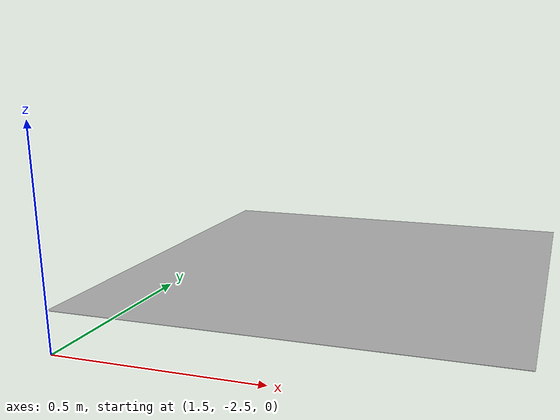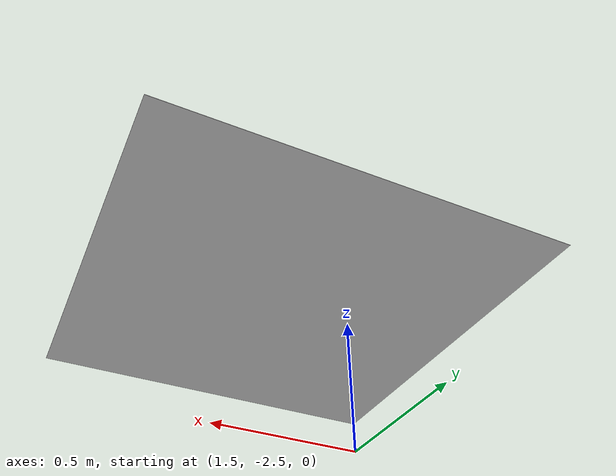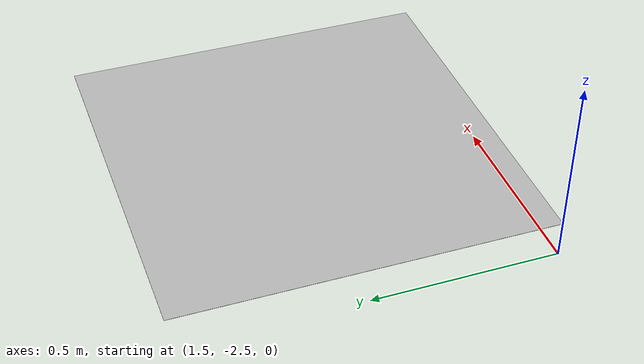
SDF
<?xml version="1.0" encoding="UTF-8"?>
<sdf version="1.4">
   <model name="chessboard">
      <static>true</static>
      <pose>2 -2 0.1 0 0 4.712</pose>
      <link name="link">
         <collision name="collision">
            <geometry>
               <plane>
                  <normal>0 0 1</normal>
                  <size>1 1</size>
               </plane>
            </geometry>
            <surface>
               <friction>
                  <ode>
                     <mu>100</mu>
                     <mu2>50</mu2>
                  </ode>
               </friction>
            </surface>
         </collision>
         <visual name="visual">
            <cast_shadows>false</cast_shadows>
            <geometry>
               <plane>
                  <normal>0 0 1</normal>
                  <size>1 1</size>
               </plane>
            </geometry>
            <material>
               <script>
                  <uri>model://chessboard/materials/scripts</uri>
                  <uri>model://chessboard/materials/textures/</uri>
                  <name>qrcode/Image</name>
               </script>
            </material>
         </visual>
      </link>
   </model>
</sdf>
